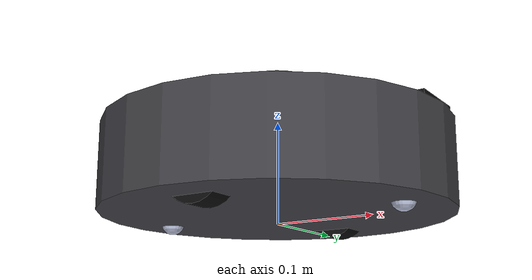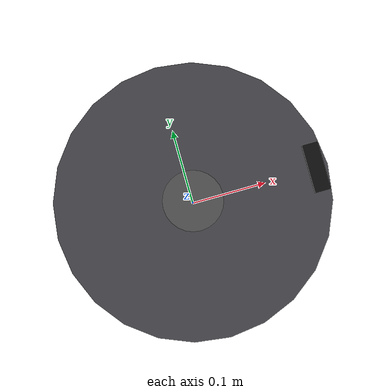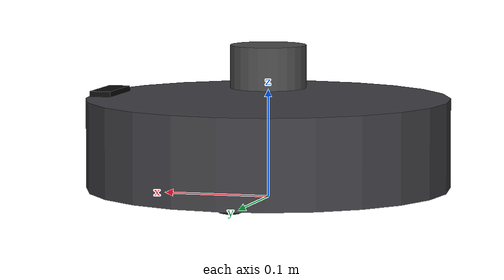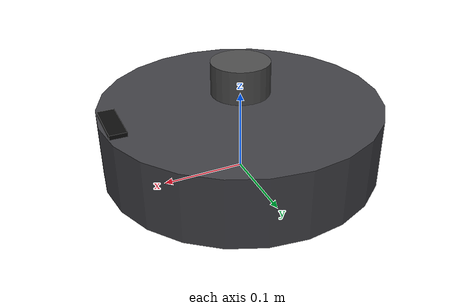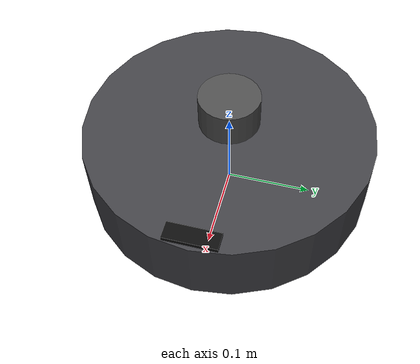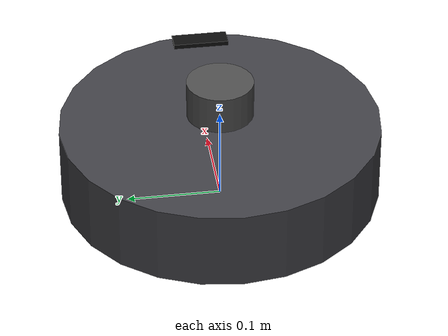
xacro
<?xml version="1.0"?>

<robot name="roombabot" xmlns:xacro="http://ros.org/wiki/xacro">

  <!-- Start GZ or Ignition depending on ROS 2 Version -->
  <xacro:arg name="is_ignition" default="true"/>

  <!-- Load Simulated or Real Hardware Interfaces -->
  <xacro:arg name="is_sim" default="true"/>

  <!-- Real-hardware only: passed through to the ros2_control plugin. -->
  <xacro:arg name="motor_port" default="/dev/esp32_motor"/>
  <xacro:arg name="encoder_ticks_per_revolution" default="1440.0"/>

  <!-- Chassis dimensions                                                     -->
  <!-- Roomba 600-series / iRobot Create 2 published figures. Every piece of  -->
  <!-- geometry below is derived from these, so re-measuring the real chassis -->
  <!-- means editing this block and nothing else. Two values are also         -->
  <!-- duplicated outside this file and must be kept in step:                 -->
  <!--   wheel_radius / wheel_separation                                      -->
  <!--       -> roombabot_controller/config/roombabot_controllers.yaml        -->
  <!--       -> roombabot_controller/launch/controller.launch.py defaults     -->
  <!--   body_radius (+ margin)                                               -->
  <!--       -> robot_radius in roombabot_navigation/config/costmap.yaml      -->
  <!--          and planner_server.yaml                                       -->

  <!-- 340 mm across, 92 mm tall overall. -->
  <xacro:property name="body_diameter"   value="0.340"/>
  <xacro:property name="body_radius"     value="${body_diameter/2.0}"/>
  <!-- Underside of the shell above the floor; the shell itself makes up the rest
       of the 92 mm total height. -->
  <xacro:property name="body_clearance"  value="0.008"/>
  <xacro:property name="body_height"     value="0.084"/>
  <xacro:property name="body_mass"       value="3.0"/>

  <!-- 64.35 mm diameter drive wheels (caliper, 2026-10-11) on a 235 mm track. -->
  <xacro:property name="wheel_radius"     value="0.0322"/>
  <xacro:property name="wheel_width"      value="0.025"/>
  <xacro:property name="wheel_separation" value="0.235"/>
  <xacro:property name="wheel_mass"       value="0.15"/>

  <!-- A real Roomba has one front caster; the rear one here exists so the body
       cannot tip backwards in simulation. Both are frictionless spheres. -->
  <xacro:property name="caster_radius"   value="0.012"/>
  <xacro:property name="caster_offset_x" value="0.130"/>
  <xacro:property name="caster_mass"     value="0.01"/>

  <xacro:property name="laser_height" value="0.122"/>
  <xacro:property name="laser_mass"   value="0.17"/>
  <xacro:property name="imu_height"   value="0.060"/>
  <xacro:property name="imu_mass"     value="0.02"/>

  <!-- base_link sits at the wheel axle, so every child offset below is relative
       to axle height rather than to the floor. -->
  <xacro:property name="base_height" value="${wheel_radius}"/>

  <!-- Inertia helpers                                                        -->

  <xacro:macro name="cylinder_inertia_z" params="mass radius length">
    <inertia ixx="${mass*(3.0*radius*radius + length*length)/12.0}" ixy="0.0" ixz="0.0"
             iyy="${mass*(3.0*radius*radius + length*length)/12.0}" iyz="0.0"
             izz="${mass*radius*radius/2.0}"/>
  </xacro:macro>

  <!-- Wheels spin about Y, so that is the axis carrying the (1/2)mr^2 term. -->
  <xacro:macro name="cylinder_inertia_y" params="mass radius length">
    <inertia ixx="${mass*(3.0*radius*radius + length*length)/12.0}" ixy="0.0" ixz="0.0"
             iyy="${mass*radius*radius/2.0}" iyz="0.0"
             izz="${mass*(3.0*radius*radius + length*length)/12.0}"/>
  </xacro:macro>

  <xacro:macro name="sphere_inertia" params="mass radius">
    <inertia ixx="${2.0*mass*radius*radius/5.0}" ixy="0.0" ixz="0.0"
             iyy="${2.0*mass*radius*radius/5.0}" iyz="0.0"
             izz="${2.0*mass*radius*radius/5.0}"/>
  </xacro:macro>

  <!-- Materials                                                              -->

  <material name="roomba_grey">
    <color rgba="0.25 0.25 0.27 1"/>
  </material>
  <material name="black">
    <color rgba="0.05 0.05 0.05 1"/>
  </material>
  <material name="blue">
    <color rgba="0 0 1 1"/>
  </material>
  <material name="silver">
    <color rgba="0.79 0.82 0.93 1"/>
  </material>
  <material name="dark_grey">
    <color rgba="0.3 0.3 0.3 1"/>
  </material>

  <!-- Include Gazebo Parameters -->
  <xacro:include filename="$(find roombabot_description)/urdf/roombabot_gazebo.xacro" />

  <!-- Include ros2_control Plugins -->
  <xacro:include filename="$(find roombabot_description)/urdf/roombabot_ros2_control.xacro" />

  <!-- Links                                                                  -->

  <link name="base_footprint"/>

  <link name="base_link">
    <inertial>
      <origin xyz="0 0 ${body_clearance + body_height/2.0 - base_height}" rpy="0 0 0"/>
      <mass value="${body_mass}"/>
      <xacro:cylinder_inertia_z mass="${body_mass}" radius="${body_radius}" length="${body_height}"/>
    </inertial>
    <visual>
      <origin xyz="0 0 ${body_clearance + body_height/2.0 - base_height}" rpy="0 0 0"/>
      <geometry>
        <cylinder radius="${body_radius}" length="${body_height}"/>
      </geometry>
      <material name="roomba_grey"/>
    </visual>
    <collision>
      <origin xyz="0 0 ${body_clearance + body_height/2.0 - base_height}" rpy="0 0 0"/>
      <geometry>
        <cylinder radius="${body_radius}" length="${body_height}"/>
      </geometry>
    </collision>
  </link>

  <joint name="base_joint" type="fixed">
    <parent link="base_footprint"/>
    <child link="base_link"/>
    <origin xyz="0 0 ${base_height}" rpy="0 0 0"/>
  </joint>

  <!-- Marks the front of an otherwise rotationally symmetric shell, so heading is
       readable at a glance in RViz/Foxglove. Massless and collision-free. -->
  <link name="front_marker_link">
    <visual>
      <origin xyz="0 0 0" rpy="0 0 0"/>
      <geometry>
        <box size="0.02 0.06 0.01"/>
      </geometry>
      <material name="black"/>
    </visual>
  </link>

  <joint name="front_marker_joint" type="fixed">
    <parent link="base_link"/>
    <child link="front_marker_link"/>
    <origin xyz="${body_radius - 0.015} 0 ${body_clearance + body_height - base_height}" rpy="0 0 0"/>
  </joint>

  <link name="wheel_left_link">
    <inertial>
      <origin xyz="0 0 0" rpy="${pi/2.0} 0 0"/>
      <mass value="${wheel_mass}"/>
      <xacro:cylinder_inertia_y mass="${wheel_mass}" radius="${wheel_radius}" length="${wheel_width}"/>
    </inertial>
    <visual>
      <origin xyz="0 0 0" rpy="${pi/2.0} 0 0"/>
      <geometry>
        <cylinder radius="${wheel_radius}" length="${wheel_width}"/>
      </geometry>
      <material name="black"/>
    </visual>
    <collision>
      <origin xyz="0 0 0" rpy="${pi/2.0} 0 0"/>
      <geometry>
        <cylinder radius="${wheel_radius}" length="${wheel_width}"/>
      </geometry>
    </collision>
  </link>

  <joint name="wheel_left_joint" type="continuous">
    <origin xyz="0 ${wheel_separation/2.0} 0" rpy="0 0 0"/>
    <parent link="base_link"/>
    <child link="wheel_left_link"/>
    <axis xyz="0 1 0"/>
  </joint>

  <link name="wheel_right_link">
    <inertial>
      <origin xyz="0 0 0" rpy="${pi/2.0} 0 0"/>
      <mass value="${wheel_mass}"/>
      <xacro:cylinder_inertia_y mass="${wheel_mass}" radius="${wheel_radius}" length="${wheel_width}"/>
    </inertial>
    <visual>
      <origin xyz="0 0 0" rpy="${pi/2.0} 0 0"/>
      <geometry>
        <cylinder radius="${wheel_radius}" length="${wheel_width}"/>
      </geometry>
      <material name="black"/>
    </visual>
    <collision>
      <origin xyz="0 0 0" rpy="${pi/2.0} 0 0"/>
      <geometry>
        <cylinder radius="${wheel_radius}" length="${wheel_width}"/>
      </geometry>
    </collision>
  </link>

  <joint name="wheel_right_joint" type="continuous">
    <origin xyz="0 ${-wheel_separation/2.0} 0" rpy="0 0 0"/>
    <parent link="base_link"/>
    <child link="wheel_right_link"/>
    <axis xyz="0 1 0"/>
  </joint>

  <xacro:macro name="caster" params="name x">
    <link name="caster_${name}_link">
      <inertial>
        <origin xyz="0 0 0" rpy="0 0 0"/>
        <mass value="${caster_mass}"/>
        <xacro:sphere_inertia mass="${caster_mass}" radius="${caster_radius}"/>
      </inertial>
      <visual>
        <origin xyz="0 0 0" rpy="0 0 0"/>
        <geometry>
          <sphere radius="${caster_radius}"/>
        </geometry>
        <material name="silver"/>
      </visual>
      <collision>
        <origin xyz="0 0 0" rpy="0 0 0"/>
        <geometry>
          <sphere radius="${caster_radius}"/>
        </geometry>
      </collision>
    </link>

    <joint name="caster_${name}_joint" type="fixed">
      <origin xyz="${x} 0 ${caster_radius - base_height}" rpy="0 0 0"/>
      <parent link="base_link"/>
      <child link="caster_${name}_link"/>
    </joint>
  </xacro:macro>

  <xacro:caster name="front" x="${caster_offset_x}"/>
  <xacro:caster name="rear"  x="${-caster_offset_x}"/>

  <link name="imu_link">
    <inertial>
      <origin xyz="0 0 0" rpy="0 0 0"/>
      <mass value="${imu_mass}"/>
      <xacro:cylinder_inertia_z mass="${imu_mass}" radius="0.01" length="0.005"/>
    </inertial>
    <visual>
      <origin xyz="0 0 0" rpy="0 0 0"/>
      <geometry>
        <box size="0.021 0.016 0.003"/>
      </geometry>
      <material name="blue"/>
    </visual>
  </link>

  <joint name="imu_joint" type="fixed">
    <origin xyz="0 0 ${imu_height - base_height}" rpy="0 0 0"/>
    <parent link="base_link"/>
    <child link="imu_link"/>
  </joint>

  <link name="laser_link">
    <inertial>
      <origin xyz="0 0 0" rpy="0 0 0"/>
      <mass value="${laser_mass}"/>
      <xacro:cylinder_inertia_z mass="${laser_mass}" radius="0.0355" length="0.040"/>
    </inertial>
    <visual>
      <origin xyz="0 0 0" rpy="0 0 0"/>
      <geometry>
        <cylinder radius="0.0355" length="0.040"/>
      </geometry>
      <material name="dark_grey"/>
    </visual>
    <collision>
      <origin xyz="0 0 0" rpy="0 0 0"/>
      <geometry>
        <cylinder radius="0.0355" length="0.040"/>
      </geometry>
    </collision>
  </link>

  <joint name="laser_joint" type="fixed">
    <origin xyz="0 0 ${laser_height - base_height}" rpy="0 0 ${pi}"/>
    <parent link="base_link"/>
    <child link="laser_link"/>
  </joint>

</robot>
